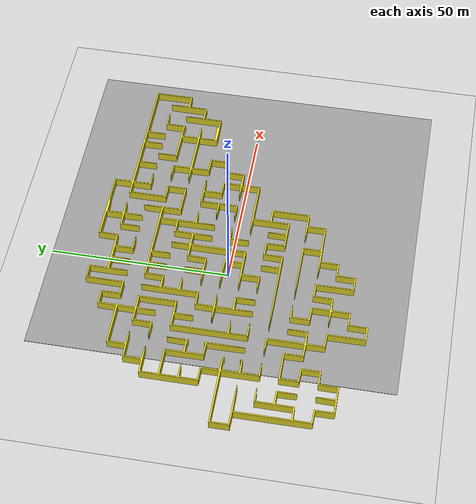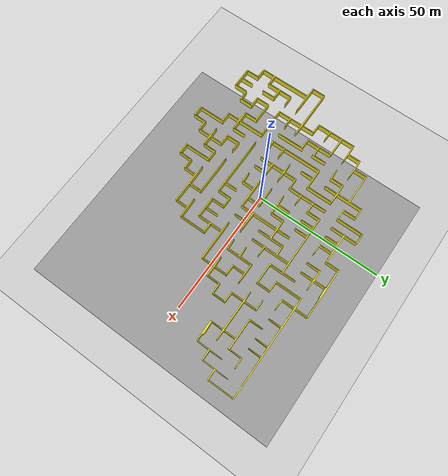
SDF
<sdf version="1.6">
 <world name="default">
  <model name="ground_plane">
   <static>1</static>
   <link name="link">
    <collision name="collision">
     <geometry><plane><normal>0 0 1</normal><size>100 100</size></plane></geometry>
     <surface><friction><ode><mu>100</mu><mu2>50</mu2></ode></friction></surface>
    </collision>
    <visual name="visual">
     <cast_shadows>0</cast_shadows>
     <geometry><plane><normal>0 0 1</normal><size>100 100</size></plane></geometry>
     <material>
      <script><uri>file://media/materials/scripts/gazebo.material</uri><name>Gazebo/Grey</name></script>
     </material>
    </visual>
   </link>
  </model>
  <model name="rcap_indoor1">
   <static>1</static>
   <pose>-50.9395 40.6315 0 0 -0 0</pose>
   <link name="link">
    <collision name="collision">
     <geometry><mesh><uri>model://rcap_indoor1/rcap_indoor1.stl</uri><scale>355 461 500</scale></mesh></geometry>
    </collision>
    <visual name="visual">
     <geometry><mesh><uri>model://rcap_indoor1/rcap_indoor1.stl</uri><scale>355 461 500</scale></mesh></geometry>
     <cast_shadows>0</cast_shadows>
     <material>
      <script><uri>file://media/materials/scripts/gazebo.material</uri><name>Gazebo/Yellow</name></script>
     </material>
    </visual>
   </link>
  </model>
  <model name="ground_plane_0">
   <static>1</static>
   <link name="link">
    <collision name="collision">
     <geometry><plane><normal>0 0 1</normal><size>100 100</size></plane></geometry>
     <surface>
      <contact><collide_bitmask>65535</collide_bitmask></contact>
      <friction><ode><mu>100</mu><mu2>50</mu2></ode></friction>
     </surface>
    </collision>
    <visual name="visual">
     <cast_shadows>0</cast_shadows>
     <geometry><plane><normal>0 0 1</normal><size>100 100</size></plane></geometry>
     <material>
      <script><uri>file://media/materials/scripts/gazebo.material</uri><name>Gazebo/Grey</name></script>
     </material>
    </visual>
   </link>
   <pose>18.9568 -0.07662 0 0 -0 0</pose>
  </model>
 </world>
</sdf>
